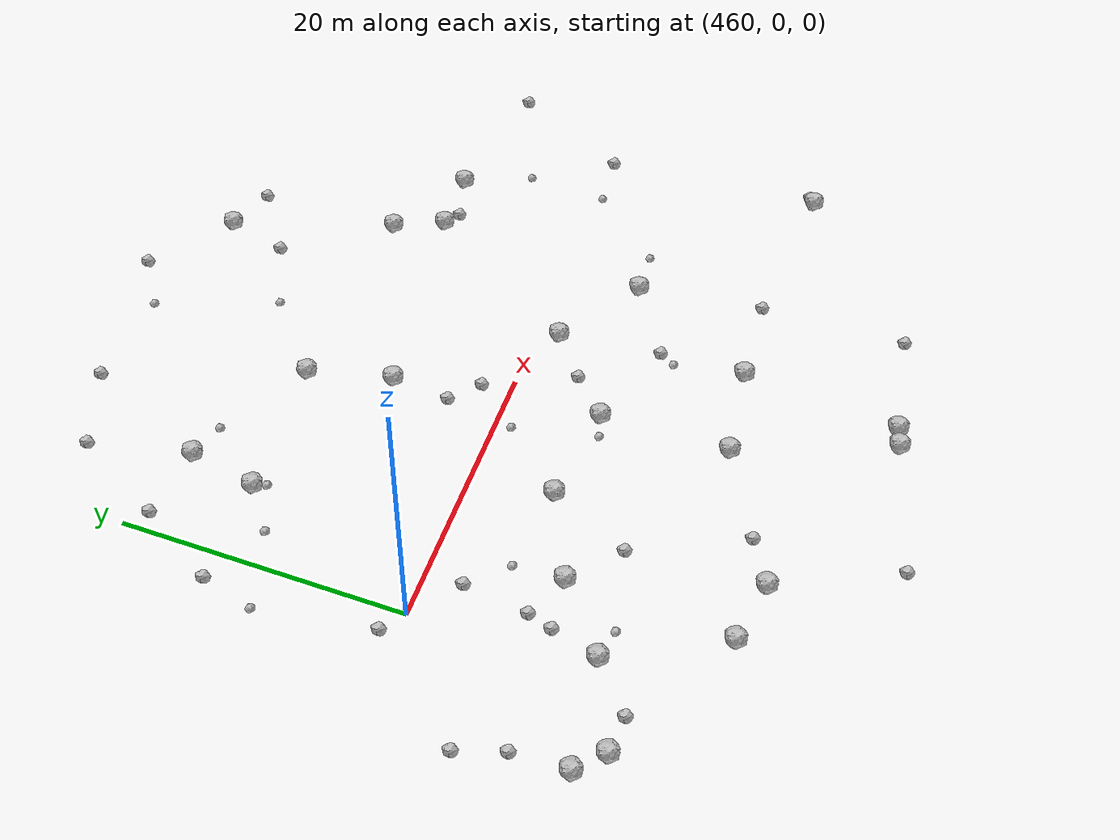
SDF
<sdf version="1.6">
 <world name="default">
  <include><uri>model://sun</uri></include>
  <model name="rock1_12_4">
   <include><uri>model://rock1</uri><pose>477.3329481657573 8.0923558813585 0.5 0 0 0</pose></include>
  </model>
  <model name="rock1_12_5">
   <include><uri>model://rock1</uri><pose>487.22772997377 25.258039896176577 0.5 0 0 0</pose></include>
  </model>
  <model name="rock1_12_6">
   <include><uri>model://rock1</uri><pose>461.2061192016518 -12.147017419257992 0.5 0 0 0</pose></include>
  </model>
  <model name="rock1_12_7">
   <include><uri>model://rock1</uri><pose>497.45876579510053 10.47619571754089 0.5 0 0 0</pose></include>
  </model>
  <model name="rock1_12_8">
   <include><uri>model://rock1</uri><pose>475.8500394427975 14.001177555864395 0.5 0 0 0</pose></include>
  </model>
  <model name="rock1_12_9">
   <include><uri>model://rock1</uri><pose>465.3106287594489 -19.756413810378007 0.5 0 0 0</pose></include>
  </model>
  <model name="rock1_12_10">
   <include><uri>model://rock1</uri><pose>455.3236109455622 -14.699362178715752 0.5 0 0 0</pose></include>
  </model>
  <model name="rock1_12_11">
   <include><uri>model://rock1</uri><pose>492.73544199202394 10.283520557688213 0.5 0 0 0</pose></include>
  </model>
  <model name="rock1_12_12">
   <include><uri>model://rock1</uri><pose>453.52578783111784 -13.016822175818284 0.5 0 0 0</pose></include>
  </model>
  <model name="rock1_12_13">
   <include><uri>model://rock1</uri><pose>504.32984144112083 -15.445915964629009 0.5 0 0 0</pose></include>
  </model>
  <model name="rock1_12_14">
   <include><uri>model://rock1</uri><pose>469.7985060548532 -20.570936716591092 0.5 0 0 0</pose></include>
  </model>
  <model name="rock1_12_15">
   <include><uri>model://rock1</uri><pose>491.1406692827347 13.780897178659096 0.5 0 0 0</pose></include>
  </model>
  <model name="rock1_12_16">
   <include><uri>model://rock1</uri><pose>465.65422965272705 13.318630059490687 0.5 0 0 0</pose></include>
  </model>
  <model name="rock1_12_17">
   <include><uri>model://rock1</uri><pose>485.1108554836623 -1.4693226113567484 0.5 0 0 0</pose></include>
  </model>
  <model name="rock1_12_18">
   <include><uri>model://rock1</uri><pose>485.0447405949768 -25.850119654094836 0.5 0 0 0</pose></include>
  </model>
  <model name="rock1_12_19">
   <include><uri>model://rock1</uri><pose>479.1335749973612 -6.493294203046091 0.5 0 0 0</pose></include>
  </model>
  <model name="rock1_12_20">
   <include><uri>model://rock1</uri><pose>465.83810152962724 -8.453553068839842 0.5 0 0 0</pose></include>
  </model>
  <model name="rock1_12_21">
   <include><uri>model://rock1</uri><pose>471.94323866412 -5.641906159646037 0.5 0 0 0</pose></include>
  </model>
  <model name="rock1_12_22">
   <include><uri>model://rock1</uri><pose>491.36317940462 -5.501226259430993 0.5 0 0 0</pose></include>
  </model>
  <model name="rock1_12_23">
   <include><uri>model://rock1</uri><pose>486.1138706393622 -14.801461566888772 0.5 0 0 0</pose></include>
  </model>
  <model name="rock1_12_24">
   <include><uri>model://rock1</uri><pose>483.6011592880985 -26.2351982926877 0.5 0 0 0</pose></include>
  </model>
  <model name="rock1_12_25">
   <include><uri>model://rock1</uri><pose>466.65339556703515 18.21790502379156 0.5 0 0 0</pose></include>
  </model>
  <model name="rock1_12_26">
   <include><uri>model://rock1</uri><pose>479.328786414775 -15.573665317498477 0.5 0 0 0</pose></include>
  </model>
  <model name="rock2_12_0">
   <include><uri>model://rock2</uri><pose>478.8377393467082 2.095629590295786 0.3 0 0 0</pose></include>
  </model>
  <model name="rock2_12_1">
   <include><uri>model://rock2</uri><pose>470.6188355582178 27.46088670319645 0.3 0 0 0</pose></include>
  </model>
  <model name="rock2_12_2">
   <include><uri>model://rock2</uri><pose>485.80935759273 -8.783646954191177 0.3 0 0 0</pose></include>
  </model>
  <model name="rock2_12_3">
   <include><uri>model://rock2</uri><pose>493.8371116763274 9.541301806345608 0.3 0 0 0</pose></include>
  </model>
  <model name="rock2_12_4">
   <include><uri>model://rock2</uri><pose>458.0359613635786 13.148884956039687 0.3 0 0 0</pose></include>
  </model>
  <model name="rock2_12_5">
   <include><uri>model://rock2</uri><pose>476.8513277977785 3.8766545319195416 0.3 0 0 0</pose></include>
  </model>
  <model name="rock2_12_6">
   <include><uri>model://rock2</uri><pose>461.34688430340543 18.747548305832737 0.3 0 0 0</pose></include>
  </model>
  <model name="rock2_12_7">
   <include><uri>model://rock2</uri><pose>507.69233085784435 8.872715791875983 0.3 0 0 0</pose></include>
  </model>
  <model name="rock2_12_8">
   <include><uri>model://rock2</uri><pose>485.92765158610314 20.829752475260058 0.3 0 0 0</pose></include>
  </model>
  <model name="rock2_12_9">
   <include><uri>model://rock2</uri><pose>458.34921231941394 1.1864351078235202 0.3 0 0 0</pose></include>
  </model>
  <model name="rock2_12_10">
   <include><uri>model://rock2</uri><pose>453.3307277070246 -9.17202828191948 0.3 0 0 0</pose></include>
  </model>
  <model name="rock2_12_11">
   <include><uri>model://rock2</uri><pose>481.7788731317654 -3.985394363512068 0.3 0 0 0</pose></include>
  </model>
  <model name="rock2_12_12">
   <include><uri>model://rock2</uri><pose>492.63943378791987 -24.774374832671104 0.3 0 0 0</pose></include>
  </model>
  <model name="rock2_12_13">
   <include><uri>model://rock2</uri><pose>462.05848789536617 -8.83965275906274 0.3 0 0 0</pose></include>
  </model>
  <model name="rock2_12_14">
   <include><uri>model://rock2</uri><pose>469.1081668640259 -11.372605295021707 0.3 0 0 0</pose></include>
  </model>
  <model name="rock2_12_15">
   <include><uri>model://rock2</uri><pose>463.20611572034716 -2.5324133317942916 0.3 0 0 0</pose></include>
  </model>
  <model name="rock2_12_16">
   <include><uri>model://rock2</uri><pose>504.72874143766626 -15.019813992447876 0.3 0 0 0</pose></include>
  </model>
  <model name="rock2_12_17">
   <include><uri>model://rock2</uri><pose>452.246146562575 -5.954213581611192 0.3 0 0 0</pose></include>
  </model>
  <model name="rock2_12_18">
   <include><uri>model://rock2</uri><pose>490.657026721815 24.121994810799137 0.3 0 0 0</pose></include>
  </model>
  <model name="rock2_12_19">
   <include><uri>model://rock2</uri><pose>492.4139366747644 -14.453654800325795 0.3 0 0 0</pose></include>
  </model>
  <model name="rock2_12_20">
   <include><uri>model://rock2</uri><pose>473.6681656673214 -28.72794425264265 0.3 0 0 0</pose></include>
  </model>
  <model name="rock2_12_21">
   <include><uri>model://rock2</uri><pose>457.88923392094415 -14.94404382567299 0.3 0 0 0</pose></include>
  </model>
  <model name="rock2_12_22">
   <include><uri>model://rock2</uri><pose>503.20187529402847 0.20865868502157525 0.3 0 0 0</pose></include>
  </model>
  <model name="rock2_12_23">
   <include><uri>model://rock2</uri><pose>472.83974902177334 -18.87245372127999 0.3 0 0 0</pose></include>
  </model>
  <model name="rock2_12_24">
   <include><uri>model://rock2</uri><pose>481.37441864808466 29.46618141721367 0.3 0 0 0</pose></include>
  </model>
  <model name="rock2_12_25">
   <include><uri>model://rock2</uri><pose>462.59698808880717 -7.109047697931974 0.3 0 0 0</pose></include>
  </model>
  <model name="rock2_12_26">
   <include><uri>model://rock2</uri><pose>464.9533052974318 25.36320226242963 0.3 0 0 0</pose></include>
  </model>
  <model name="rock3_12_0">
   <include><uri>model://rock3</uri><pose>463.2267111321228 -12.666728361278714 0.2 0 0 0</pose></include>
  </model>
  <model name="rock3_12_1">
   <include><uri>model://rock3</uri><pose>485.15852755713865 -9.940588113809092 0.2 0 0 0</pose></include>
  </model>
  <model name="rock3_12_2">
   <include><uri>model://rock3</uri><pose>465.5828739402005 -5.000580229406172 0.2 0 0 0</pose></include>
  </model>
  <model name="rock3_12_3">
   <include><uri>model://rock3</uri><pose>469.17403843012227 17.46934508137499 0.2 0 0 0</pose></include>
  </model>
  <model name="rock3_12_4">
   <include><uri>model://rock3</uri><pose>476.03163558137294 -1.121215925248439 0.2 0 0 0</pose></include>
  </model>
  <model name="rock3_12_5">
   <include><uri>model://rock3</uri><pose>494.4631741877544 -5.396903673034043 0.2 0 0 0</pose></include>
  </model>
  <model name="rock3_12_6">
   <include><uri>model://rock3</uri><pose>462.55700467281616 10.958119857582446 0.2 0 0 0</pose></include>
  </model>
  <model name="rock3_12_7">
   <include><uri>model://rock3</uri><pose>499.2300826819045 -0.16460202852427486 0.2 0 0 0</pose></include>
  </model>
  <model name="rock3_12_8">
   <include><uri>model://rock3</uri><pose>465.9387068318554 12.41735561852564 0.2 0 0 0</pose></include>
  </model>
  <model name="rock3_12_9">
   <include><uri>model://rock3</uri><pose>481.0323145702565 18.532223123816188 0.2 0 0 0</pose></include>
  </model>
  <model name="rock3_12_10">
   <include><uri>model://rock3</uri><pose>499.54726452176425 5.693379833128475 0.2 0 0 0</pose></include>
  </model>
  <model name="rock3_12_11">
   <include><uri>model://rock3</uri><pose>477.81409977500965 27.045032108719248 0.2 0 0 0</pose></include>
  </model>
  <model name="rock3_12_12">
   <include><uri>model://rock3</uri><pose>456.98935650577295 9.321741482426475 0.2 0 0 0</pose></include>
  </model>
  <model name="rock3_12_13">
   <include><uri>model://rock3</uri><pose>477.33750368774787 -6.993622209836644 0.2 0 0 0</pose></include>
  </model>
 </world>
</sdf>
